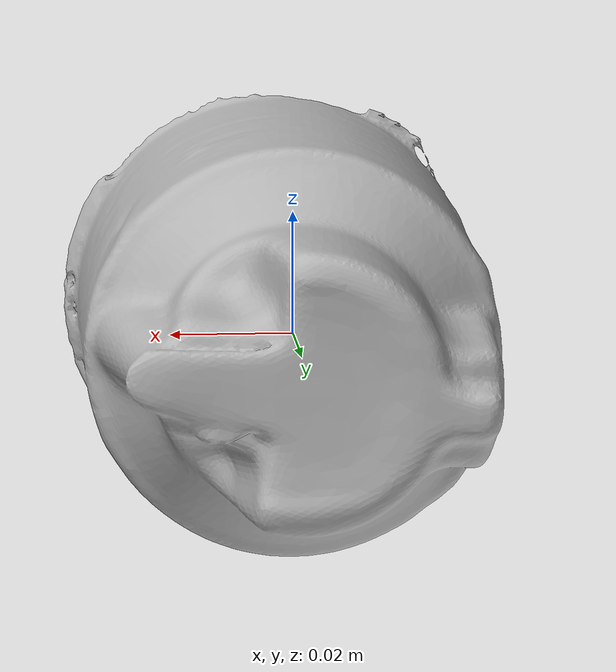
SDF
<?xml version='1.0'?>
<sdf version="1.4">
  <model name="CondensedMilk">
    <static>false</static>
    <link name="link">
      <inertial>
        <pose>0.0007284536080711177 0.001505200469210069 -0.00023564085148848255 1.5171335856668045 -1.405804491736401 -3.0636506403330834</pose>
        <mass>0.02846953105254718</mass>
        <inertia>
          <ixx>2.4308461163919574e-05</ixx>
          <ixy>-7.343992008505909e-22</ixy>
          <ixz>-1.9405776309045942e-21</ixz>
          <iyy>2.368457422227646e-05</iyy>
          <iyz>-1.5083286382838618e-21</iyz>
          <izz>1.5467296639592274e-05</izz>
        </inertia>
      </inertial>
      <collision name="collision">
        <geometry>
          <mesh>
            <!-- Use a downsampled mesh for collisions -->
            <uri>model:///CondensedMilk/CondensedMilk_250_collision.obj</uri>
	        </mesh>
        </geometry>
        <surface>
      </surface>
      </collision>
      <visual name="visual">
        <geometry>
          <mesh>
            <uri>model:///CondensedMilk/CondensedMilk_25k_tex.obj</uri>
	        </mesh>
        </geometry>
        <material>
          <script>
            <uri>model:///CondensedMilk/CondensedMilk.material</uri>
            <name>CondensedMilk</name>
          </script>
        </material>
      </visual>
    </link>
  </model>
</sdf>
